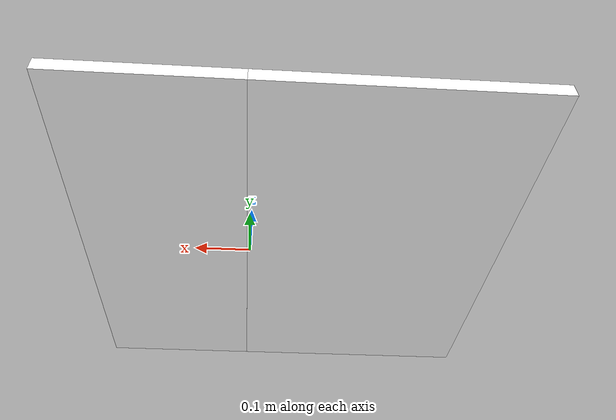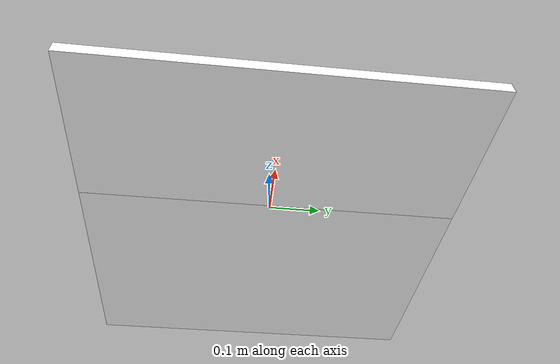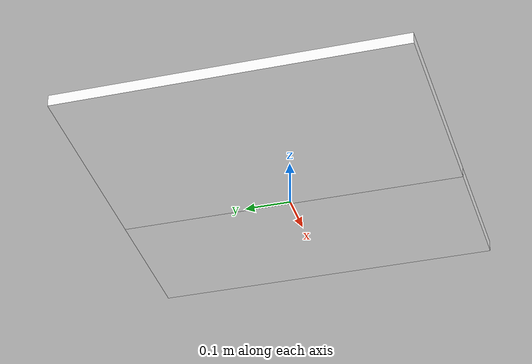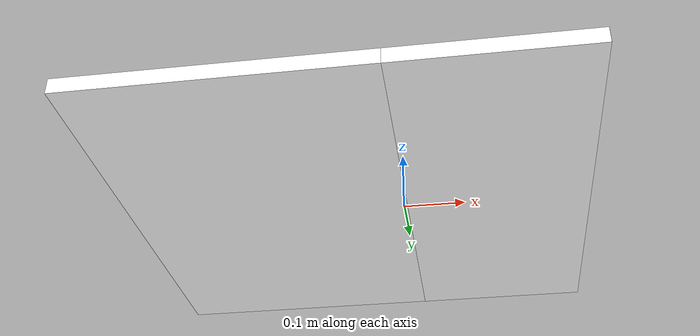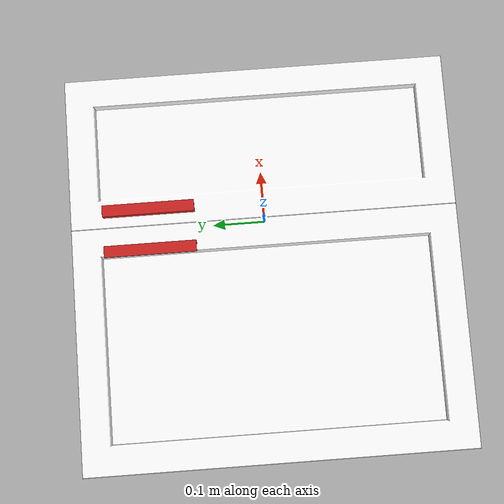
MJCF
<mujoco model="Cabinet_7d7a3425">
  <compiler autolimits="true" boundmass="0.01" angle="radian"/>
  <default>
    <default class="/">
      <default class="__VISUAL_MJT__">
        <geom contype="0" conaffinity="0" group="0"/>
      </default>
      <default class="__STRUCTURAL_MJT__">
        <geom contype="8" conaffinity="15" group="4" friction="0.90000000000000002 0.90000000000000002 0.001" solref="0.025000000000000001 1" solimp="0.998 0.998 0.001"/>
      </default>
      <default class="__DYNAMIC_MJT__">
        <geom contype="1" conaffinity="15" group="4" friction="0.90000000000000002 0.90000000000000002 0.001" solref="0.025000000000000001 1" solimp="0.998 0.998 0.001"/>
      </default>
    </default>
  </default>
  <asset>
    <material name="material_WhiteWoodClean" class="/" specular="0.5" shininess="0.5" rgba="1 1 1 1"/>
    <mesh name="Cabinet_7d7a3425_Mesh_01_6617e75f" class="/" file="Cabinet_7d7a3425_Mesh_01_6617e75f/Cabinet_7d7a3425_Mesh_01_6617e75f.obj" scale="1 1 1" inertia="legacy"/>
    <texture name="HammeredMetal_AlbedoTransparency_2" type="2d" file="HammeredMetal_AlbedoTransparency.png"/>
    <material name="material_HammeredMetal_AlbedoTransparency_2" class="/" texture="HammeredMetal_AlbedoTransparency_2" specular="0.5" shininess="0.5" rgba="1 0.93407709999999999 0.81617649999999997 1"/>
    <mesh name="Cabinet_7d7a3425_handle_3_178mm_01_10dc8fc2" class="/" file="Cabinet_7d7a3425_handle_3_178mm_01_10dc8fc2/Cabinet_7d7a3425_handle_3_178mm_01_10dc8fc2.obj" scale="1 1 1" inertia="legacy"/>
    <mesh name="Cabinet_7d7a3425_Mesh_02_be71bde2" class="/" file="Cabinet_7d7a3425_Mesh_02_be71bde2/Cabinet_7d7a3425_Mesh_02_be71bde2.obj" scale="1 1 1" inertia="legacy"/>
    <mesh name="Cabinet_7d7a3425_handle_3_178mm_02_385015db" class="/" file="Cabinet_7d7a3425_handle_3_178mm_02_385015db/Cabinet_7d7a3425_handle_3_178mm_02_385015db.obj" scale="1 1 1" inertia="legacy"/>
  </asset>
  <worldbody>
    <body name="Cabinet_7d7a3425">
      <body name="Cabinet_7d7a3425_Mesh_01_6617e75f" pos="0.0099999904632568359 0 0" quat="1 0 0 0">
        <geom name="Cabinet_7d7a3425_Mesh_01_6617e75f" class="__VISUAL_MJT__" type="mesh" material="material_WhiteWoodClean" mesh="Cabinet_7d7a3425_Mesh_01_6617e75f"/>
        <joint name="Cabinet_7d7a3425_joint" class="/" type="hinge" pos="0.30309998989105225 0 0" axis="0 -1 0" stiffness="0" range="-1.3089969389957472 0" damping="0.10000000000000001" frictionloss="0"/>
        <geom name="Cabinet_7d7a3425_Mesh_01_6617e75f_PrimitiveCollider_0" class="__DYNAMIC_MJT__" type="box" size="0.15000037848949432 0.37500020861625671 0.013550043106079102" rgba="0 1 0 1" pos="0.14499986171722412 0 0.013550043106079102" quat="0 1 0 0"/>
        <body name="Cabinet_7d7a3425_handle_3_178mm_01_10dc8fc2" pos="0.018999934196472168 0.22200003266334534 0.0099999904632568359" quat="0.70710678118654757 0 0 -0.70710678118654746">
          <geom name="Cabinet_7d7a3425_handle_3_178mm_01_10dc8fc2" class="__VISUAL_MJT__" type="mesh" material="material_HammeredMetal_AlbedoTransparency_2" mesh="Cabinet_7d7a3425_handle_3_178mm_01_10dc8fc2"/>
          <geom name="Cabinet_7d7a3425_handle_3_178mm_01_10dc8fc2_PrimitiveCollider_0" class="__DYNAMIC_MJT__" type="box" size="0.088752105832099915 0.0035549125168472528 0.016431529074907303" rgba="0 1 0 1" pos="-0 0 0.016289949417114258" quat="0 1 0 0"/>
          <geom name="Cabinet_7d7a3425_handle_3_178mm_01_10dc8fc2_PrimitiveCollider_1" class="__DYNAMIC_MJT__" type="box" size="0.088752105832099915 0.0077598155476152897 0.0019227256998419762" rgba="0 1 0 1" pos="-1.3452705616145977e-09 0.011284948326647282 0.030798912048339844" quat="0 1 0 0"/>
        </body>
      </body>
      <body name="Cabinet_7d7a3425_Mesh_02_be71bde2" pos="-0 0 0" quat="1 0 0 0">
        <geom name="Cabinet_7d7a3425_Mesh_02_be71bde2" class="__VISUAL_MJT__" type="mesh" material="material_WhiteWoodClean" mesh="Cabinet_7d7a3425_Mesh_02_be71bde2"/>
        <joint name="Cabinet_7d7a3425_Mesh_02_be71bde2__1" class="/" type="hinge" pos="-0.46500003337860107 0 0" axis="0 -1 0" stiffness="0" range="0 1.3089969389957472" damping="0.10000000000000001" frictionloss="0"/>
        <geom name="Cabinet_7d7a3425_Mesh_02_be71bde2_PrimitiveCollider_0" class="__DYNAMIC_MJT__" type="box" size="0.23500038683414459 0.37500020861625671 0.013550043106079102" rgba="0 1 0 1" pos="-0.23000001907348633 0 0.013550043106079102" quat="0 1 0 0"/>
        <body name="Cabinet_7d7a3425_handle_3_178mm_02_385015db" pos="-0.034999966621398926 0.22200003266334534 0.0099999904632568359" quat="0.70710678118654757 0 0 0.70710678118654746">
          <geom name="Cabinet_7d7a3425_handle_3_178mm_02_385015db" class="__VISUAL_MJT__" type="mesh" material="material_HammeredMetal_AlbedoTransparency_2" mesh="Cabinet_7d7a3425_handle_3_178mm_02_385015db"/>
          <geom name="Cabinet_7d7a3425_handle_3_178mm_02_385015db_PrimitiveCollider_0" class="__DYNAMIC_MJT__" type="box" size="0.088752105832099915 0.0035549125168472528 0.016431529074907303" rgba="0 1 0 1" pos="-0 0 0.016289949417114258" quat="0 1 0 0"/>
          <geom name="Cabinet_7d7a3425_handle_3_178mm_02_385015db_PrimitiveCollider_1" class="__DYNAMIC_MJT__" type="box" size="0.088752105832099915 0.0077598155476152897 0.0019227256998419762" rgba="0 1 0 1" pos="1.3452705616145977e-09 0.011284948326647282 0.030798912048339844" quat="0 1 0 0"/>
        </body>
      </body>
    </body>
  </worldbody>
  <contact>
    <exclude name="//unnamed_contact_0" body1="Cabinet_7d7a3425_Mesh_01_6617e75f" body2="Cabinet_7d7a3425_handle_3_178mm_01_10dc8fc2"/>
    <exclude name="//unnamed_contact_1" body1="Cabinet_7d7a3425_Mesh_02_be71bde2" body2="Cabinet_7d7a3425_handle_3_178mm_01_10dc8fc2"/>
  </contact>
</mujoco>
